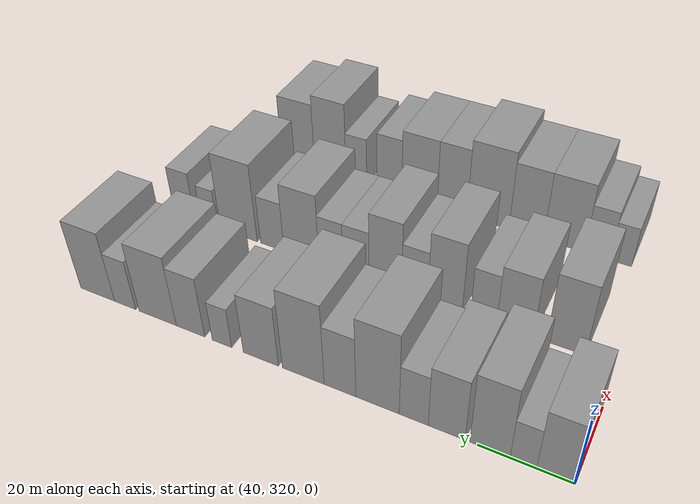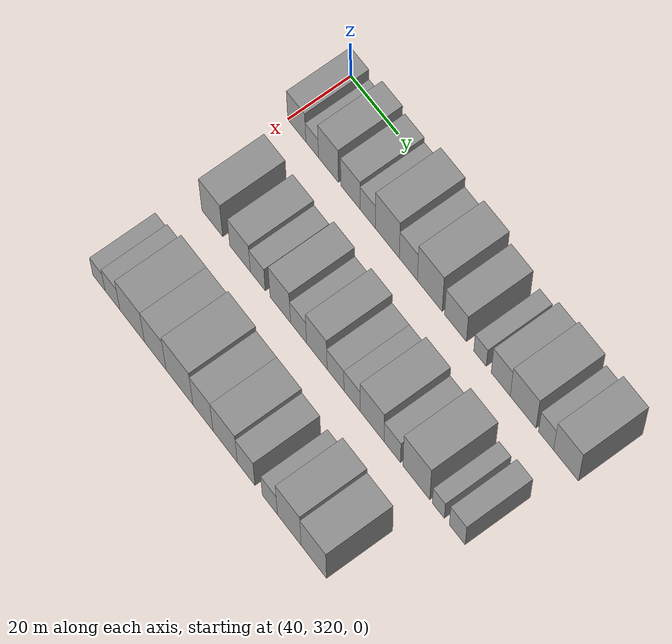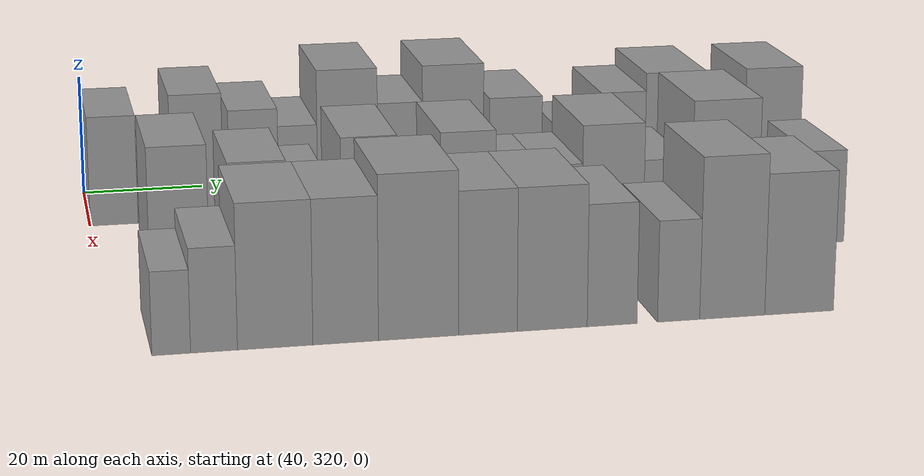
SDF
<sdf version="1.6">
 <world name="default">
  <model name="building_107">
   <static>1</static>
   <pose>50.0000 323.8422 0 0.000000 0.000000 0.000000</pose>
   <link name="link">
    <pose>0 0 9.00 0 0 0</pose>
    <collision name="collision"><geometry><box><size>20.0000 7.6942 18.0000</size></box></geometry></collision>
    <visual name="visual">
     <cast_shadows>0</cast_shadows>
     <geometry><box><size>20.0000 7.6942 18.0000</size></box></geometry>
     <material>
      <script>
       <uri>model://grey_wall/materials/scripts</uri>
       <uri>model://grey_wall/materials/textures</uri>
       <name>vrc/grey_wall</name>
      </script>
     </material>
    </visual>
   </link>
  </model>
  <model name="building_108">
   <static>1</static>
   <pose>50.0000 330.4075 0 0.000000 0.000000 0.000000</pose>
   <link name="link">
    <pose>0 0 6.00 0 0 0</pose>
    <collision name="collision"><geometry><box><size>20.0000 5.4365 12.0000</size></box></geometry></collision>
    <visual name="visual">
     <cast_shadows>0</cast_shadows>
     <geometry><box><size>20.0000 5.4365 12.0000</size></box></geometry>
     <material>
      <script>
       <uri>model://grey_wall/materials/scripts</uri>
       <uri>model://grey_wall/materials/textures</uri>
       <name>vrc/grey_wall</name>
      </script>
     </material>
    </visual>
   </link>
  </model>
  <model name="building_109">
   <static>1</static>
   <pose>50.0000 337.3617 0 0.000000 0.000000 0.000000</pose>
   <link name="link">
    <pose>0 0 10.50 0 0 0</pose>
    <collision name="collision"><geometry><box><size>20.0000 8.4718 21.0000</size></box></geometry></collision>
    <visual name="visual">
     <cast_shadows>0</cast_shadows>
     <geometry><box><size>20.0000 8.4718 21.0000</size></box></geometry>
     <material>
      <script>
       <uri>model://grey_wall/materials/scripts</uri>
       <uri>model://grey_wall/materials/textures</uri>
       <name>vrc/grey_wall</name>
      </script>
     </material>
    </visual>
   </link>
  </model>
  <model name="building_110">
   <static>1</static>
   <pose>50.0000 346.6164 0 0.000000 0.000000 0.000000</pose>
   <link name="link">
    <pose>0 0 9.00 0 0 0</pose>
    <collision name="collision"><geometry><box><size>20.0000 8.0377 18.0000</size></box></geometry></collision>
    <visual name="visual">
     <cast_shadows>0</cast_shadows>
     <geometry><box><size>20.0000 8.0377 18.0000</size></box></geometry>
     <material>
      <script>
       <uri>model://grey_wall/materials/scripts</uri>
       <uri>model://grey_wall/materials/textures</uri>
       <name>vrc/grey_wall</name>
      </script>
     </material>
    </visual>
   </link>
  </model>
  <model name="building_111">
   <static>1</static>
   <pose>50.0000 353.8605 0 0.000000 0.000000 0.000000</pose>
   <link name="link">
    <pose>0 0 7.50 0 0 0</pose>
    <collision name="collision"><geometry><box><size>20.0000 6.4505 15.0000</size></box></geometry></collision>
    <visual name="visual">
     <cast_shadows>0</cast_shadows>
     <geometry><box><size>20.0000 6.4505 15.0000</size></box></geometry>
     <material>
      <script>
       <uri>model://grey_wall/materials/scripts</uri>
       <uri>model://grey_wall/materials/textures</uri>
       <name>vrc/grey_wall</name>
      </script>
     </material>
    </visual>
   </link>
  </model>
  <model name="building_112">
   <static>1</static>
   <pose>50.0000 362.0780 0 0.000000 0.000000 0.000000</pose>
   <link name="link">
    <pose>0 0 12.00 0 0 0</pose>
    <collision name="collision"><geometry><box><size>20.0000 9.9844 24.0000</size></box></geometry></collision>
    <visual name="visual">
     <cast_shadows>0</cast_shadows>
     <geometry><box><size>20.0000 9.9844 24.0000</size></box></geometry>
     <material>
      <script>
       <uri>model://grey_wall/materials/scripts</uri>
       <uri>model://grey_wall/materials/textures</uri>
       <name>vrc/grey_wall</name>
      </script>
     </material>
    </visual>
   </link>
  </model>
  <model name="building_113">
   <static>1</static>
   <pose>50.0000 370.8257 0 0.000000 0.000000 0.000000</pose>
   <link name="link">
    <pose>0 0 9.00 0 0 0</pose>
    <collision name="collision"><geometry><box><size>20.0000 7.5111 18.0000</size></box></geometry></collision>
    <visual name="visual">
     <cast_shadows>0</cast_shadows>
     <geometry><box><size>20.0000 7.5111 18.0000</size></box></geometry>
     <material>
      <script>
       <uri>model://grey_wall/materials/scripts</uri>
       <uri>model://grey_wall/materials/textures</uri>
       <name>vrc/grey_wall</name>
      </script>
     </material>
    </visual>
   </link>
  </model>
  <model name="building_114">
   <static>1</static>
   <pose>50.0000 379.7075 0 0.000000 0.000000 0.000000</pose>
   <link name="link">
    <pose>0 0 12.00 0 0 0</pose>
    <collision name="collision"><geometry><box><size>20.0000 10.2525 24.0000</size></box></geometry></collision>
    <visual name="visual">
     <cast_shadows>0</cast_shadows>
     <geometry><box><size>20.0000 10.2525 24.0000</size></box></geometry>
     <material>
      <script>
       <uri>model://grey_wall/materials/scripts</uri>
       <uri>model://grey_wall/materials/textures</uri>
       <name>vrc/grey_wall</name>
      </script>
     </material>
    </visual>
   </link>
  </model>
  <model name="building_115">
   <static>1</static>
   <pose>50.0000 390.2999 0 0.000000 0.000000 0.000000</pose>
   <link name="link">
    <pose>0 0 9.00 0 0 0</pose>
    <collision name="collision"><geometry><box><size>20.0000 8.9322 18.0000</size></box></geometry></collision>
    <visual name="visual">
     <cast_shadows>0</cast_shadows>
     <geometry><box><size>20.0000 8.9322 18.0000</size></box></geometry>
     <material>
      <script>
       <uri>model://grey_wall/materials/scripts</uri>
       <uri>model://grey_wall/materials/textures</uri>
       <name>vrc/grey_wall</name>
      </script>
     </material>
    </visual>
   </link>
  </model>
  <model name="building_116">
   <static>1</static>
   <pose>50.0000 400.3165 0 0.000000 0.000000 0.000000</pose>
   <link name="link">
    <pose>0 0 6.00 0 0 0</pose>
    <collision name="collision"><geometry><box><size>20.0000 5.1012 12.0000</size></box></geometry></collision>
    <visual name="visual">
     <cast_shadows>0</cast_shadows>
     <geometry><box><size>20.0000 5.1012 12.0000</size></box></geometry>
     <material>
      <script>
       <uri>model://grey_wall/materials/scripts</uri>
       <uri>model://grey_wall/materials/textures</uri>
       <name>vrc/grey_wall</name>
      </script>
     </material>
    </visual>
   </link>
  </model>
  <model name="building_117">
   <static>1</static>
   <pose>50.0000 408.7088 0 0.000000 0.000000 0.000000</pose>
   <link name="link">
    <pose>0 0 9.00 0 0 0</pose>
    <collision name="collision"><geometry><box><size>20.0000 7.6834 18.0000</size></box></geometry></collision>
    <visual name="visual">
     <cast_shadows>0</cast_shadows>
     <geometry><box><size>20.0000 7.6834 18.0000</size></box></geometry>
     <material>
      <script>
       <uri>model://grey_wall/materials/scripts</uri>
       <uri>model://grey_wall/materials/textures</uri>
       <name>vrc/grey_wall</name>
      </script>
     </material>
    </visual>
   </link>
  </model>
  <model name="building_118">
   <static>1</static>
   <pose>50.0000 417.7447 0 0.000000 0.000000 0.000000</pose>
   <link name="link">
    <pose>0 0 10.50 0 0 0</pose>
    <collision name="collision"><geometry><box><size>20.0000 10.3885 21.0000</size></box></geometry></collision>
    <visual name="visual">
     <cast_shadows>0</cast_shadows>
     <geometry><box><size>20.0000 10.3885 21.0000</size></box></geometry>
     <material>
      <script>
       <uri>model://grey_wall/materials/scripts</uri>
       <uri>model://grey_wall/materials/textures</uri>
       <name>vrc/grey_wall</name>
      </script>
     </material>
    </visual>
   </link>
  </model>
  <model name="building_119">
   <static>1</static>
   <pose>50.0000 426.9444 0 0.000000 0.000000 0.000000</pose>
   <link name="link">
    <pose>0 0 7.50 0 0 0</pose>
    <collision name="collision"><geometry><box><size>20.0000 6.0108 15.0000</size></box></geometry></collision>
    <visual name="visual">
     <cast_shadows>0</cast_shadows>
     <geometry><box><size>20.0000 6.0108 15.0000</size></box></geometry>
     <material>
      <script>
       <uri>model://grey_wall/materials/scripts</uri>
       <uri>model://grey_wall/materials/textures</uri>
       <name>vrc/grey_wall</name>
      </script>
     </material>
    </visual>
   </link>
  </model>
  <model name="building_120">
   <static>1</static>
   <pose>50.0000 434.9145 0 0.000000 0.000000 0.000000</pose>
   <link name="link">
    <pose>0 0 10.50 0 0 0</pose>
    <collision name="collision"><geometry><box><size>20.0000 9.9293 21.0000</size></box></geometry></collision>
    <visual name="visual">
     <cast_shadows>0</cast_shadows>
     <geometry><box><size>20.0000 9.9293 21.0000</size></box></geometry>
     <material>
      <script>
       <uri>model://grey_wall/materials/scripts</uri>
       <uri>model://grey_wall/materials/textures</uri>
       <name>vrc/grey_wall</name>
      </script>
     </material>
    </visual>
   </link>
  </model>
  <model name="building_232">
   <static>1</static>
   <pose>82.0000 331.5142 0 0.000000 0.000000 0.000000</pose>
   <link name="link">
    <pose>0 0 10.50 0 0 0</pose>
    <collision name="collision"><geometry><box><size>20.0000 8.9146 21.0000</size></box></geometry></collision>
    <visual name="visual">
     <cast_shadows>0</cast_shadows>
     <geometry><box><size>20.0000 8.9146 21.0000</size></box></geometry>
     <material>
      <script>
       <uri>model://grey_wall/materials/scripts</uri>
       <uri>model://grey_wall/materials/textures</uri>
       <name>vrc/grey_wall</name>
      </script>
     </material>
    </visual>
   </link>
  </model>
  <model name="building_233">
   <static>1</static>
   <pose>82.0000 343.3546 0 0.000000 0.000000 0.000000</pose>
   <link name="link">
    <pose>0 0 9.00 0 0 0</pose>
    <collision name="collision"><geometry><box><size>20.0000 8.7663 18.0000</size></box></geometry></collision>
    <visual name="visual">
     <cast_shadows>0</cast_shadows>
     <geometry><box><size>20.0000 8.7663 18.0000</size></box></geometry>
     <material>
      <script>
       <uri>model://grey_wall/materials/scripts</uri>
       <uri>model://grey_wall/materials/textures</uri>
       <name>vrc/grey_wall</name>
      </script>
     </material>
    </visual>
   </link>
  </model>
  <model name="building_234">
   <static>1</static>
   <pose>82.0000 350.8895 0 0.000000 0.000000 0.000000</pose>
   <link name="link">
    <pose>0 0 7.50 0 0 0</pose>
    <collision name="collision"><geometry><box><size>20.0000 6.3034 15.0000</size></box></geometry></collision>
    <visual name="visual">
     <cast_shadows>0</cast_shadows>
     <geometry><box><size>20.0000 6.3034 15.0000</size></box></geometry>
     <material>
      <script>
       <uri>model://grey_wall/materials/scripts</uri>
       <uri>model://grey_wall/materials/textures</uri>
       <name>vrc/grey_wall</name>
      </script>
     </material>
    </visual>
   </link>
  </model>
  <model name="building_235">
   <static>1</static>
   <pose>82.0000 360.3417 0 0.000000 0.000000 0.000000</pose>
   <link name="link">
    <pose>0 0 10.50 0 0 0</pose>
    <collision name="collision"><geometry><box><size>20.0000 8.6011 21.0000</size></box></geometry></collision>
    <visual name="visual">
     <cast_shadows>0</cast_shadows>
     <geometry><box><size>20.0000 8.6011 21.0000</size></box></geometry>
     <material>
      <script>
       <uri>model://grey_wall/materials/scripts</uri>
       <uri>model://grey_wall/materials/textures</uri>
       <name>vrc/grey_wall</name>
      </script>
     </material>
    </visual>
   </link>
  </model>
  <model name="building_236">
   <static>1</static>
   <pose>82.0000 367.9858 0 0.000000 0.000000 0.000000</pose>
   <link name="link">
    <pose>0 0 7.50 0 0 0</pose>
    <collision name="collision"><geometry><box><size>20.0000 6.6871 15.0000</size></box></geometry></collision>
    <visual name="visual">
     <cast_shadows>0</cast_shadows>
     <geometry><box><size>20.0000 6.6871 15.0000</size></box></geometry>
     <material>
      <script>
       <uri>model://grey_wall/materials/scripts</uri>
       <uri>model://grey_wall/materials/textures</uri>
       <name>vrc/grey_wall</name>
      </script>
     </material>
    </visual>
   </link>
  </model>
  <model name="building_237">
   <static>1</static>
   <pose>82.0000 375.6049 0 0.000000 0.000000 0.000000</pose>
   <link name="link">
    <pose>0 0 10.50 0 0 0</pose>
    <collision name="collision"><geometry><box><size>20.0000 8.5512 21.0000</size></box></geometry></collision>
    <visual name="visual">
     <cast_shadows>0</cast_shadows>
     <geometry><box><size>20.0000 8.5512 21.0000</size></box></geometry>
     <material>
      <script>
       <uri>model://grey_wall/materials/scripts</uri>
       <uri>model://grey_wall/materials/textures</uri>
       <name>vrc/grey_wall</name>
      </script>
     </material>
    </visual>
   </link>
  </model>
  <model name="building_238">
   <static>1</static>
   <pose>82.0000 383.3863 0 0.000000 0.000000 0.000000</pose>
   <link name="link">
    <pose>0 0 7.50 0 0 0</pose>
    <collision name="collision"><geometry><box><size>20.0000 7.0115 15.0000</size></box></geometry></collision>
    <visual name="visual">
     <cast_shadows>0</cast_shadows>
     <geometry><box><size>20.0000 7.0115 15.0000</size></box></geometry>
     <material>
      <script>
       <uri>model://grey_wall/materials/scripts</uri>
       <uri>model://grey_wall/materials/textures</uri>
       <name>vrc/grey_wall</name>
      </script>
     </material>
    </visual>
   </link>
  </model>
  <model name="building_239">
   <static>1</static>
   <pose>82.0000 390.1941 0 0.000000 0.000000 0.000000</pose>
   <link name="link">
    <pose>0 0 7.50 0 0 0</pose>
    <collision name="collision"><geometry><box><size>20.0000 6.6041 15.0000</size></box></geometry></collision>
    <visual name="visual">
     <cast_shadows>0</cast_shadows>
     <geometry><box><size>20.0000 6.6041 15.0000</size></box></geometry>
     <material>
      <script>
       <uri>model://grey_wall/materials/scripts</uri>
       <uri>model://grey_wall/materials/textures</uri>
       <name>vrc/grey_wall</name>
      </script>
     </material>
    </visual>
   </link>
  </model>
  <model name="building_240">
   <static>1</static>
   <pose>82.0000 398.4101 0 0.000000 0.000000 0.000000</pose>
   <link name="link">
    <pose>0 0 10.50 0 0 0</pose>
    <collision name="collision"><geometry><box><size>20.0000 9.8278 21.0000</size></box></geometry></collision>
    <visual name="visual">
     <cast_shadows>0</cast_shadows>
     <geometry><box><size>20.0000 9.8278 21.0000</size></box></geometry>
     <material>
      <script>
       <uri>model://grey_wall/materials/scripts</uri>
       <uri>model://grey_wall/materials/textures</uri>
       <name>vrc/grey_wall</name>
      </script>
     </material>
    </visual>
   </link>
  </model>
  <model name="building_241">
   <static>1</static>
   <pose>82.0000 406.6885 0 0.000000 0.000000 0.000000</pose>
   <link name="link">
    <pose>0 0 7.50 0 0 0</pose>
    <collision name="collision"><geometry><box><size>20.0000 6.7291 15.0000</size></box></geometry></collision>
    <visual name="visual">
     <cast_shadows>0</cast_shadows>
     <geometry><box><size>20.0000 6.7291 15.0000</size></box></geometry>
     <material>
      <script>
       <uri>model://grey_wall/materials/scripts</uri>
       <uri>model://grey_wall/materials/textures</uri>
       <name>vrc/grey_wall</name>
      </script>
     </material>
    </visual>
   </link>
  </model>
  <model name="building_242">
   <static>1</static>
   <pose>82.0000 416.4906 0 0.000000 0.000000 0.000000</pose>
   <link name="link">
    <pose>0 0 12.00 0 0 0</pose>
    <collision name="collision"><geometry><box><size>20.0000 10.8752 24.0000</size></box></geometry></collision>
    <visual name="visual">
     <cast_shadows>0</cast_shadows>
     <geometry><box><size>20.0000 10.8752 24.0000</size></box></geometry>
     <material>
      <script>
       <uri>model://grey_wall/materials/scripts</uri>
       <uri>model://grey_wall/materials/textures</uri>
       <name>vrc/grey_wall</name>
      </script>
     </material>
    </visual>
   </link>
  </model>
  <model name="building_243">
   <static>1</static>
   <pose>82.0000 425.3655 0 0.000000 0.000000 0.000000</pose>
   <link name="link">
    <pose>0 0 6.00 0 0 0</pose>
    <collision name="collision"><geometry><box><size>20.0000 4.8745 12.0000</size></box></geometry></collision>
    <visual name="visual">
     <cast_shadows>0</cast_shadows>
     <geometry><box><size>20.0000 4.8745 12.0000</size></box></geometry>
     <material>
      <script>
       <uri>model://grey_wall/materials/scripts</uri>
       <uri>model://grey_wall/materials/textures</uri>
       <name>vrc/grey_wall</name>
      </script>
     </material>
    </visual>
   </link>
  </model>
  <model name="building_244">
   <static>1</static>
   <pose>82.0000 432.9774 0 0.000000 0.000000 0.000000</pose>
   <link name="link">
    <pose>0 0 7.50 0 0 0</pose>
    <collision name="collision"><geometry><box><size>20.0000 6.3494 15.0000</size></box></geometry></collision>
    <visual name="visual">
     <cast_shadows>0</cast_shadows>
     <geometry><box><size>20.0000 6.3494 15.0000</size></box></geometry>
     <material>
      <script>
       <uri>model://grey_wall/materials/scripts</uri>
       <uri>model://grey_wall/materials/textures</uri>
       <name>vrc/grey_wall</name>
      </script>
     </material>
    </visual>
   </link>
  </model>
  <model name="building_359">
   <static>1</static>
   <pose>114.0000 327.4402 0 0.000000 0.000000 0.000000</pose>
   <link name="link">
    <pose>0 0 6.00 0 0 0</pose>
    <collision name="collision"><geometry><box><size>20.0000 5.2945 12.0000</size></box></geometry></collision>
    <visual name="visual">
     <cast_shadows>0</cast_shadows>
     <geometry><box><size>20.0000 5.2945 12.0000</size></box></geometry>
     <material>
      <script>
       <uri>model://grey_wall/materials/scripts</uri>
       <uri>model://grey_wall/materials/textures</uri>
       <name>vrc/grey_wall</name>
      </script>
     </material>
    </visual>
   </link>
  </model>
  <model name="building_360">
   <static>1</static>
   <pose>114.0000 333.3049 0 0.000000 0.000000 0.000000</pose>
   <link name="link">
    <pose>0 0 7.50 0 0 0</pose>
    <collision name="collision"><geometry><box><size>20.0000 6.4349 15.0000</size></box></geometry></collision>
    <visual name="visual">
     <cast_shadows>0</cast_shadows>
     <geometry><box><size>20.0000 6.4349 15.0000</size></box></geometry>
     <material>
      <script>
       <uri>model://grey_wall/materials/scripts</uri>
       <uri>model://grey_wall/materials/textures</uri>
       <name>vrc/grey_wall</name>
      </script>
     </material>
    </visual>
   </link>
  </model>
  <model name="building_361">
   <static>1</static>
   <pose>114.0000 341.7629 0 0.000000 0.000000 0.000000</pose>
   <link name="link">
    <pose>0 0 10.50 0 0 0</pose>
    <collision name="collision"><geometry><box><size>20.0000 10.4810 21.0000</size></box></geometry></collision>
    <visual name="visual">
     <cast_shadows>0</cast_shadows>
     <geometry><box><size>20.0000 10.4810 21.0000</size></box></geometry>
     <material>
      <script>
       <uri>model://grey_wall/materials/scripts</uri>
       <uri>model://grey_wall/materials/textures</uri>
       <name>vrc/grey_wall</name>
      </script>
     </material>
    </visual>
   </link>
  </model>
  <model name="building_362">
   <static>1</static>
   <pose>114.0000 351.6039 0 0.000000 0.000000 0.000000</pose>
   <link name="link">
    <pose>0 0 10.50 0 0 0</pose>
    <collision name="collision"><geometry><box><size>20.0000 9.2011 21.0000</size></box></geometry></collision>
    <visual name="visual">
     <cast_shadows>0</cast_shadows>
     <geometry><box><size>20.0000 9.2011 21.0000</size></box></geometry>
     <material>
      <script>
       <uri>model://grey_wall/materials/scripts</uri>
       <uri>model://grey_wall/materials/textures</uri>
       <name>vrc/grey_wall</name>
      </script>
     </material>
    </visual>
   </link>
  </model>
  <model name="building_363">
   <static>1</static>
   <pose>114.0000 361.9002 0 0.000000 0.000000 0.000000</pose>
   <link name="link">
    <pose>0 0 12.00 0 0 0</pose>
    <collision name="collision"><geometry><box><size>20.0000 11.3915 24.0000</size></box></geometry></collision>
    <visual name="visual">
     <cast_shadows>0</cast_shadows>
     <geometry><box><size>20.0000 11.3915 24.0000</size></box></geometry>
     <material>
      <script>
       <uri>model://grey_wall/materials/scripts</uri>
       <uri>model://grey_wall/materials/textures</uri>
       <name>vrc/grey_wall</name>
      </script>
     </material>
    </visual>
   </link>
  </model>
  <model name="building_364">
   <static>1</static>
   <pose>114.0000 371.8014 0 0.000000 0.000000 0.000000</pose>
   <link name="link">
    <pose>0 0 10.50 0 0 0</pose>
    <collision name="collision"><geometry><box><size>20.0000 8.4109 21.0000</size></box></geometry></collision>
    <visual name="visual">
     <cast_shadows>0</cast_shadows>
     <geometry><box><size>20.0000 8.4109 21.0000</size></box></geometry>
     <material>
      <script>
       <uri>model://grey_wall/materials/scripts</uri>
       <uri>model://grey_wall/materials/textures</uri>
       <name>vrc/grey_wall</name>
      </script>
     </material>
    </visual>
   </link>
  </model>
  <model name="building_365">
   <static>1</static>
   <pose>114.0000 381.0727 0 0.000000 0.000000 0.000000</pose>
   <link name="link">
    <pose>0 0 10.50 0 0 0</pose>
    <collision name="collision"><geometry><box><size>20.0000 10.1318 21.0000</size></box></geometry></collision>
    <visual name="visual">
     <cast_shadows>0</cast_shadows>
     <geometry><box><size>20.0000 10.1318 21.0000</size></box></geometry>
     <material>
      <script>
       <uri>model://grey_wall/materials/scripts</uri>
       <uri>model://grey_wall/materials/textures</uri>
       <name>vrc/grey_wall</name>
      </script>
     </material>
    </visual>
   </link>
  </model>
  <model name="building_366">
   <static>1</static>
   <pose>114.0000 389.7986 0 0.000000 0.000000 0.000000</pose>
   <link name="link">
    <pose>0 0 9.00 0 0 0</pose>
    <collision name="collision"><geometry><box><size>20.0000 7.3199 18.0000</size></box></geometry></collision>
    <visual name="visual">
     <cast_shadows>0</cast_shadows>
     <geometry><box><size>20.0000 7.3199 18.0000</size></box></geometry>
     <material>
      <script>
       <uri>model://grey_wall/materials/scripts</uri>
       <uri>model://grey_wall/materials/textures</uri>
       <name>vrc/grey_wall</name>
      </script>
     </material>
    </visual>
   </link>
  </model>
  <model name="building_367">
   <static>1</static>
   <pose>114.0000 399.5827 0 0.000000 0.000000 0.000000</pose>
   <link name="link">
    <pose>0 0 7.50 0 0 0</pose>
    <collision name="collision"><geometry><box><size>20.0000 6.2483 15.0000</size></box></geometry></collision>
    <visual name="visual">
     <cast_shadows>0</cast_shadows>
     <geometry><box><size>20.0000 6.2483 15.0000</size></box></geometry>
     <material>
      <script>
       <uri>model://grey_wall/materials/scripts</uri>
       <uri>model://grey_wall/materials/textures</uri>
       <name>vrc/grey_wall</name>
      </script>
     </material>
    </visual>
   </link>
  </model>
  <model name="building_368">
   <static>1</static>
   <pose>114.0000 407.5663 0 0.000000 0.000000 0.000000</pose>
   <link name="link">
    <pose>0 0 12.00 0 0 0</pose>
    <collision name="collision"><geometry><box><size>20.0000 9.7189 24.0000</size></box></geometry></collision>
    <visual name="visual">
     <cast_shadows>0</cast_shadows>
     <geometry><box><size>20.0000 9.7189 24.0000</size></box></geometry>
     <material>
      <script>
       <uri>model://grey_wall/materials/scripts</uri>
       <uri>model://grey_wall/materials/textures</uri>
       <name>vrc/grey_wall</name>
      </script>
     </material>
    </visual>
   </link>
  </model>
  <model name="building_369">
   <static>1</static>
   <pose>114.0000 417.6104 0 0.000000 0.000000 0.000000</pose>
   <link name="link">
    <pose>0 0 10.50 0 0 0</pose>
    <collision name="collision"><geometry><box><size>20.0000 10.3693 21.0000</size></box></geometry></collision>
    <visual name="visual">
     <cast_shadows>0</cast_shadows>
     <geometry><box><size>20.0000 10.3693 21.0000</size></box></geometry>
     <material>
      <script>
       <uri>model://grey_wall/materials/scripts</uri>
       <uri>model://grey_wall/materials/textures</uri>
       <name>vrc/grey_wall</name>
      </script>
     </material>
    </visual>
   </link>
  </model>
 </world>
</sdf>
